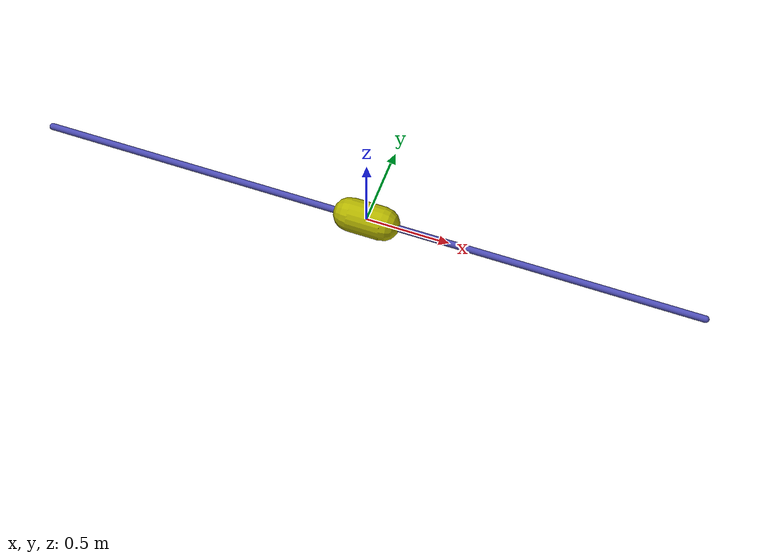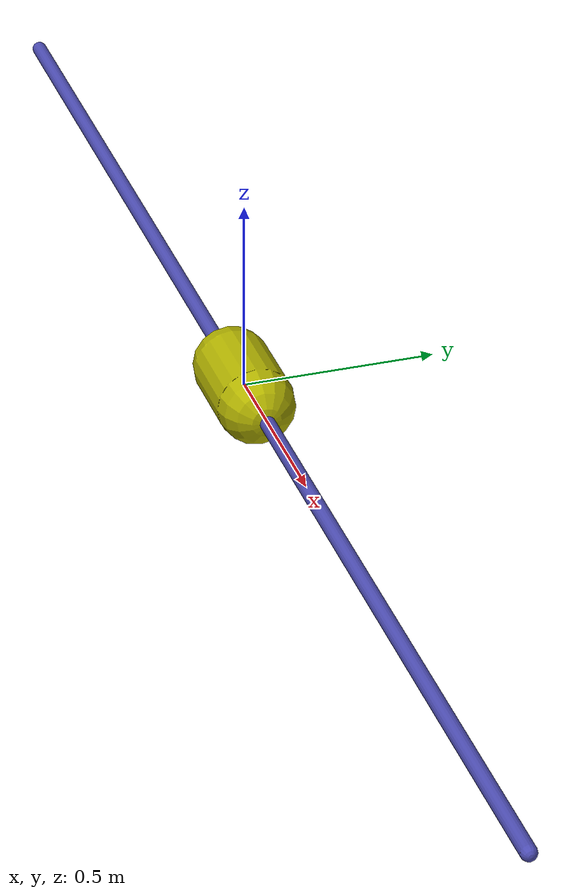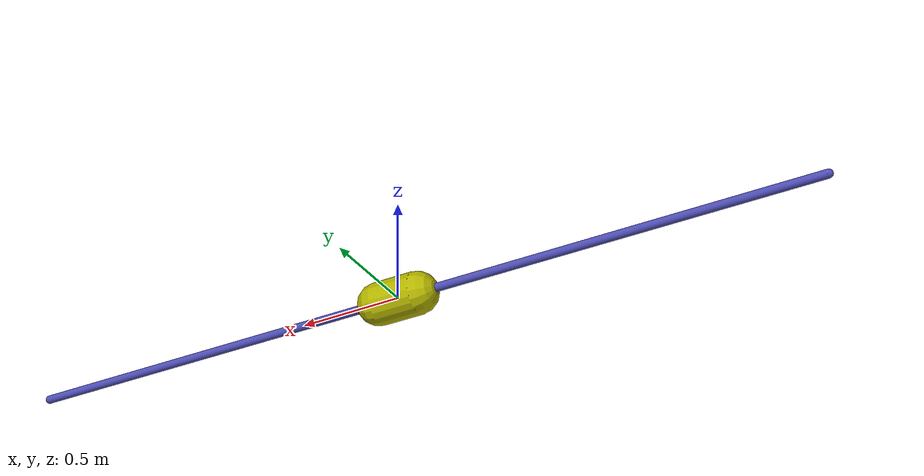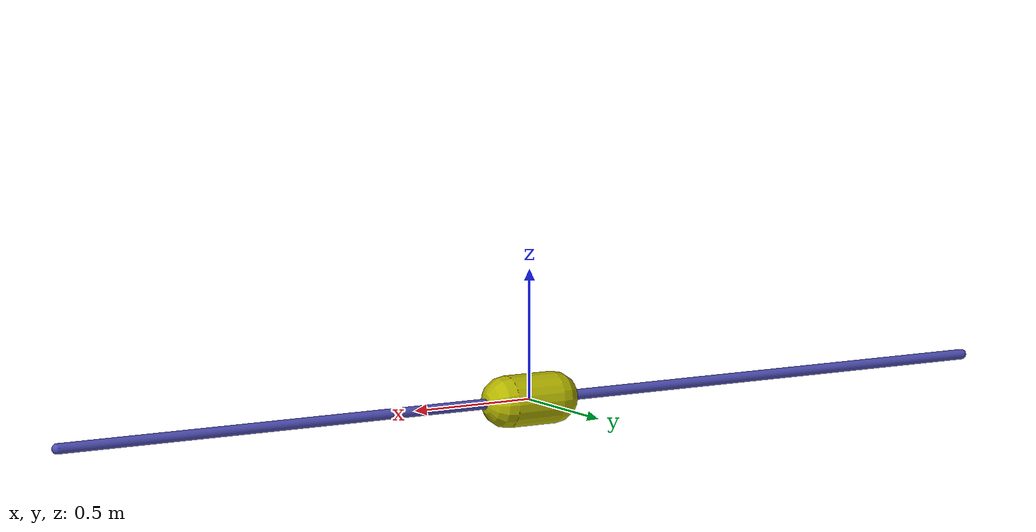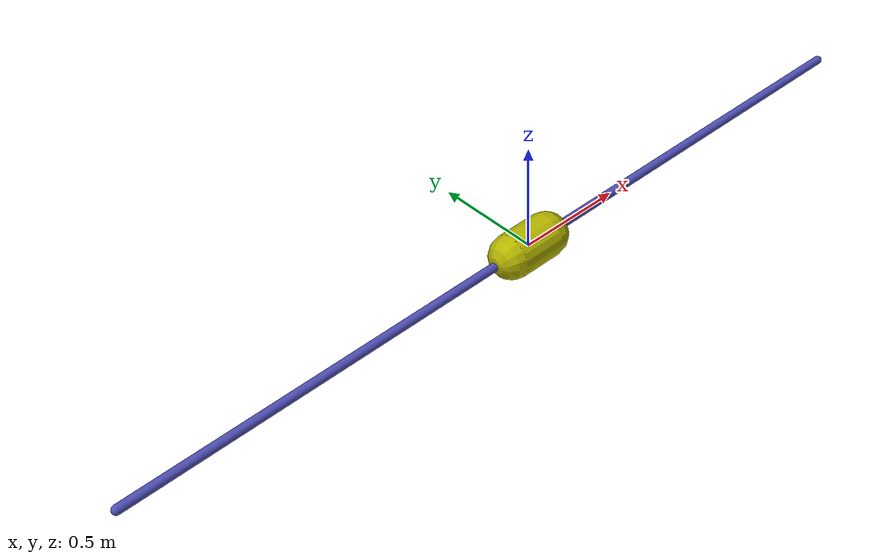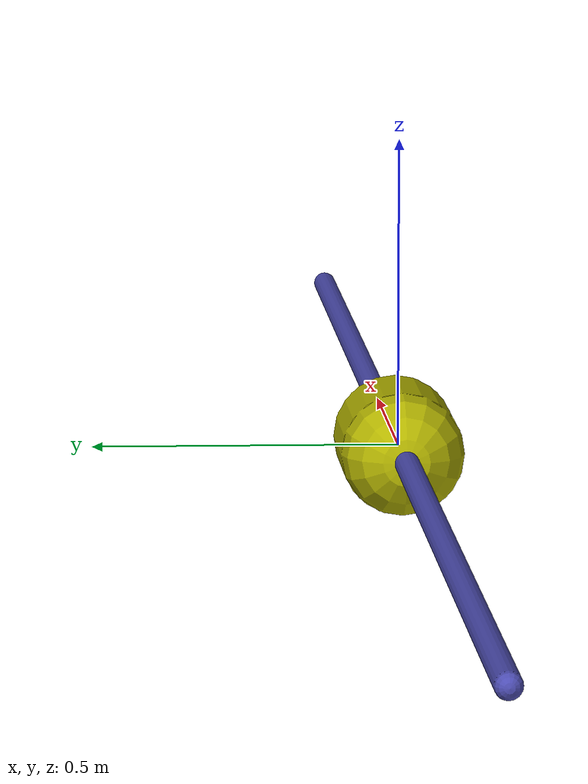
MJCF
<mujoco model="cart">
  <compiler inertiafromgeom="true"/>
  <custom>
    <numeric data="2" name="frame_skip"/>
  </custom>
  <default>
    <joint armature="0" damping="1" limited="true"/>
    <geom contype="0" friction="1 0.1 0.1" rgba="0.7 0.7 0 1"/>
    <tendon/>
    <motor ctrlrange="-3 3"/>
  </default>
  <option gravity="0 0 -9.81" integrator="RK4" timestep="0.02"/>
  <size nstack="3000"/>
  <worldbody>
    <geom name="rail" pos="0 0 0" quat="0.707 0 0.707 0" rgba="0.3 0.3 0.7 1" size="0.02 2" type="capsule"/>

    <body name="cart" pos="0 0 0">
      <joint axis="1 0 0" limited="true" name="slider" pos="0 0 0" range="-1.5 1.5" type="slide"/>
      <geom name="cart" pos="0 0 0" quat="0.707 0 0.707 0" size="0.1 0.1" type="capsule"/>
    </body>

    <body name="target" pos="0. 0. 0.">
      <joint armature="0" axis="1 0 0" damping="0" limited="true" name="target_x" pos="0 0 0" range="-1 1" ref="0" stiffness="0" type="slide"/>
      <geom conaffinity="0" contype="0" name="target" pos="0 0 0" rgba="0.9 0.2 0.2 1" size=".04" type="sphere"/>
    </body>
  </worldbody>
  <actuator>
    <motor gear="100" joint="slider" name="slide"/>
  </actuator>
</mujoco>
